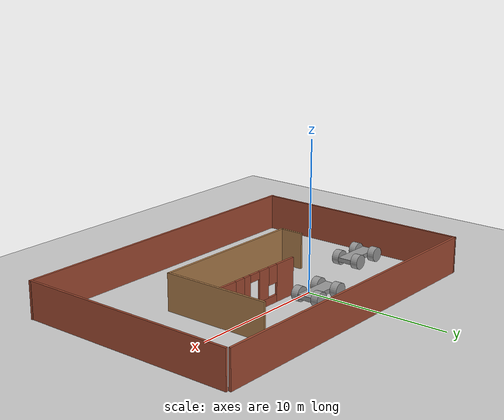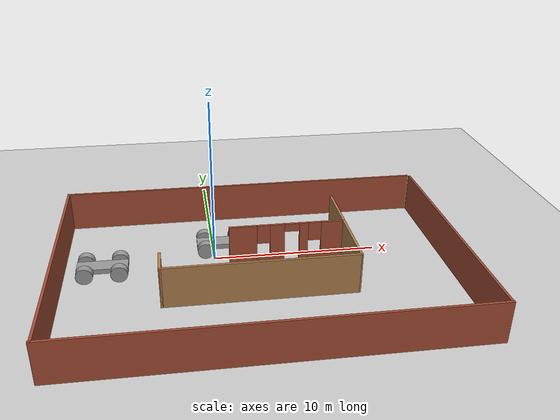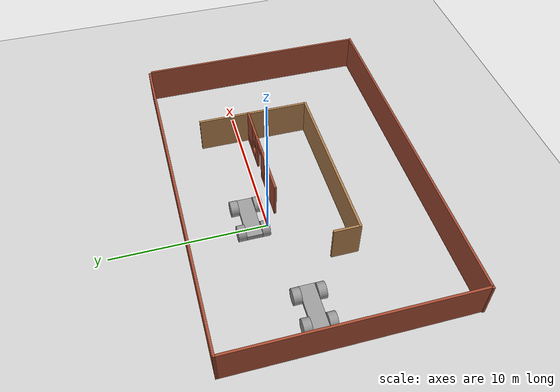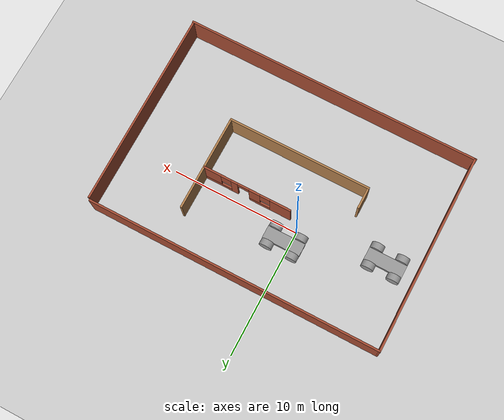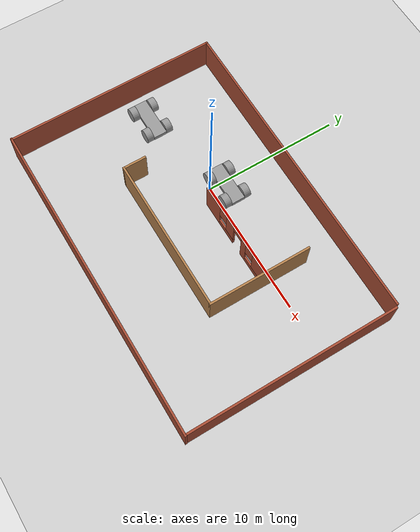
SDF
<sdf version="1.6">
 <world name="default">
  <plugin name="Project1" filename="libProject1.so"/>
  <light name="sun" type="directional">
   <pose>0 0 10 0 -0 0</pose>
   <diffuse>0.8 0.8 0.8 1</diffuse>
   <specular>0.2 0.2 0.2 1</specular>
   <attenuation>
    <range>1000</range>
    <constant>0.9</constant>
    <linear>0.01</linear>
    <quadratic>0.001</quadratic>
   </attenuation>
   <direction>-0.5 0.1 -0.9</direction>
  </light>
  <model name="ground_plane">
   <static>1</static>
   <link name="link">
    <collision name="collision">
     <geometry><plane><normal>0 0 1</normal><size>100 100</size></plane></geometry>
     <surface>
      <contact><collide_bitmask>65535</collide_bitmask></contact>
      <friction><ode><mu>100</mu><mu2>50</mu2></ode></friction>
     </surface>
    </collision>
    <visual name="visual">
     <cast_shadows>0</cast_shadows>
     <geometry><plane><normal>0 0 1</normal><size>100 100</size></plane></geometry>
     <material>
      <script><uri>file://media/materials/scripts/gazebo.material</uri><name>Gazebo/Grey</name></script>
     </material>
    </visual>
   </link>
  </model>
  <gravity>0 0 -9.8</gravity>
  <magnetic_field>6e-06 2.3e-05 -4.2e-05</magnetic_field>
  <atmosphere type="adiabatic"/>
  <physics name="default_physics" default="0" type="ode">
   <max_step_size>0.001</max_step_size>
   <real_time_factor>1</real_time_factor>
   <real_time_update_rate>1000</real_time_update_rate>
  </physics>
  <scene><ambient>0.4 0.4 0.4 1</ambient><background>0.7 0.7 0.7 1</background><shadows>1</shadows></scene>
  <audio><device>default</device></audio>
  <spherical_coordinates>
   <surface_model>EARTH_WGS84</surface_model>
   <latitude_deg>0</latitude_deg>
   <longitude_deg>0</longitude_deg>
   <elevation>0</elevation>
   <heading_deg>0</heading_deg>
  </spherical_coordinates>
  <model name="myworld">
   <pose>2.45103 -2.50473 0 0 -0 0</pose>
   <link name="Wall_11">
    <collision name="Wall_11_Collision">
     <geometry><box><size>23.25 0.15 2.5</size></box></geometry>
     <pose>0 0 1.25 0 -0 0</pose>
    </collision>
    <visual name="Wall_11_Visual">
     <pose>0 0 1.25 0 -0 0</pose>
     <geometry><box><size>23.25 0.15 2.5</size></box></geometry>
     <material>
      <script><uri>file://media/materials/scripts/gazebo.material</uri><name>Gazebo/Bricks</name></script>
      <ambient>1 1 1 1</ambient>
     </material>
     <meta><layer>0</layer></meta>
    </visual>
    <pose>-0 -7.70697 0 0 -0 3.14159</pose>
   </link>
   <link name="Wall_12">
    <collision name="Wall_12_Collision">
     <geometry><box><size>15.5174 0.15 2.5</size></box></geometry>
     <pose>0 0 1.25 0 -0 0</pose>
    </collision>
    <visual name="Wall_12_Visual">
     <pose>0 0 1.25 0 -0 0</pose>
     <geometry><box><size>15.5174 0.15 2.5</size></box></geometry>
     <material>
      <script><uri>file://media/materials/scripts/gazebo.material</uri><name>Gazebo/Bricks</name></script>
      <ambient>1 1 1 1</ambient>
     </material>
     <meta><layer>0</layer></meta>
    </visual>
    <pose>-11.5063 0.023248 0 0 -0 1.57116</pose>
   </link>
   <link name="Wall_14">
    <collision name="Wall_14_Collision">
     <geometry><box><size>15.25 0.15 2.5</size></box></geometry>
     <pose>0 0 1.25 0 -0 0</pose>
    </collision>
    <visual name="Wall_14_Visual">
     <pose>0 0 1.25 0 -0 0</pose>
     <geometry><box><size>15.25 0.15 2.5</size></box></geometry>
     <material>
      <script><uri>file://media/materials/scripts/gazebo.material</uri><name>Gazebo/Bricks</name></script>
      <ambient>1 1 1 1</ambient>
     </material>
     <meta><layer>0</layer></meta>
    </visual>
    <pose>11.5202 -0.031521 0 0 -0 1.5708</pose>
   </link>
   <link name="Wall_16">
    <collision name="Wall_16_Collision">
     <geometry><box><size>1.75 0.15 2.5</size></box></geometry>
     <pose>0 0 1.25 0 -0 0</pose>
    </collision>
    <visual name="Wall_16_Visual">
     <pose>0 0 1.25 0 -0 0</pose>
     <geometry><box><size>1.75 0.15 2.5</size></box></geometry>
     <material>
      <script><uri>file://media/materials/scripts/gazebo.material</uri><name>Gazebo/Wood</name></script>
      <ambient>1 1 1 1</ambient>
     </material>
     <meta><layer>0</layer></meta>
    </visual>
    <pose>-5.70376 -1.45034 0 0 -0 -1.5708</pose>
   </link>
   <link name="Wall_17">
    <collision name="Wall_17_Collision">
     <geometry><box><size>11.25 0.15 2.5</size></box></geometry>
     <pose>0 0 1.25 0 -0 0</pose>
    </collision>
    <visual name="Wall_17_Visual">
     <pose>0 0 1.25 0 -0 0</pose>
     <geometry><box><size>11.25 0.15 2.5</size></box></geometry>
     <material>
      <script><uri>file://media/materials/scripts/gazebo.material</uri><name>Gazebo/Wood</name></script>
      <ambient>0.435294 0.796078 0.67451 1</ambient>
     </material>
     <meta><layer>0</layer></meta>
    </visual>
    <pose>-0.153756 -2.25034 0 0 -0 0</pose>
   </link>
   <link name="Wall_18">
    <collision name="Wall_18_Collision">
     <geometry><box><size>7.5 0.15 2.5</size></box></geometry>
     <pose>0 0 1.25 0 -0 0</pose>
    </collision>
    <visual name="Wall_18_Visual">
     <pose>0 0 1.25 0 -0 0</pose>
     <geometry><box><size>7.5 0.15 2.5</size></box></geometry>
     <material>
      <script><uri>file://media/materials/scripts/gazebo.material</uri><name>Gazebo/Wood</name></script>
      <ambient>0.435294 0.796078 0.67451 1</ambient>
     </material>
     <meta><layer>0</layer></meta>
    </visual>
    <pose>5.39624 1.42466 0 0 -0 1.5708</pose>
   </link>
   <link name="Wall_9">
    <collision name="Wall_9_Collision">
     <geometry><box><size>23 0.15 2.5</size></box></geometry>
     <pose>0 0 1.25 0 -0 0</pose>
    </collision>
    <visual name="Wall_9_Visual">
     <pose>0 0 1.25 0 -0 0</pose>
     <geometry><box><size>23 0.15 2.5</size></box></geometry>
     <material>
      <script><uri>file://media/materials/scripts/gazebo.material</uri><name>Gazebo/Bricks</name></script>
      <ambient>1 1 1 1</ambient>
     </material>
     <meta><layer>0</layer></meta>
    </visual>
    <pose>-0.084094 7.70694 0 0 -0 0</pose>
   </link>
   <static>1</static>
  </model>
  <model name="model">
   <link name="link_0">
    <inertial>
     <mass>1</mass>
     <inertia>
      <ixx>0.166667</ixx>
      <ixy>0</ixy>
      <ixz>0</ixz>
      <iyy>0.166667</iyy>
      <iyz>0</iyz>
      <izz>0.166667</izz>
     </inertia>
    </inertial>
    <pose>0 -1e-06 0 0 -0 0</pose>
    <visual name="visual">
     <geometry><box><size>3 1 0.3</size></box></geometry>
     <material>
      <lighting>1</lighting>
      <script><uri>file://media/materials/scripts/gazebo.material</uri><name>Gazebo/Grey</name></script>
      <shader type="vertex"><normal_map>__default__</normal_map></shader>
      <ambient>0.3 0.3 0.3 1</ambient>
      <diffuse>0.7 0.7 0.7 1</diffuse>
      <specular>0.01 0.01 0.01 1</specular>
      <emissive>0 0 0 1</emissive>
     </material>
    </visual>
    <collision name="collision">
     <geometry><box><size>3 1 0.3</size></box></geometry>
     <surface>
      <friction>
       <ode><mu>1</mu><mu2>1</mu2><fdir1>0 0 0</fdir1><slip1>0</slip1><slip2>0</slip2></ode>
       <torsional>
        <coefficient>1</coefficient>
        <patch_radius>0</patch_radius>
        <surface_radius>0</surface_radius>
        <use_patch_radius>1</use_patch_radius>
        <ode><slip>0</slip></ode>
       </torsional>
      </friction>
      <bounce><restitution_coefficient>0</restitution_coefficient><threshold>1e+06</threshold></bounce>
      <contact>
       <collide_without_contact>0</collide_without_contact>
       <collide_without_contact_bitmask>1</collide_without_contact_bitmask>
       <collide_bitmask>1</collide_bitmask>
       <ode>
        <soft_cfm>0</soft_cfm>
        <soft_erp>0.2</soft_erp>
        <kp>1e+13</kp>
        <kd>1</kd>
        <max_vel>0.01</max_vel>
        <min_depth>0</min_depth>
       </ode>
       <bullet>
        <split_impulse>1</split_impulse>
        <split_impulse_penetration_threshold>-0.01</split_impulse_penetration_threshold>
        <soft_cfm>0</soft_cfm>
        <soft_erp>0.2</soft_erp>
        <kp>1e+13</kp>
        <kd>1</kd>
       </bullet>
      </contact>
     </surface>
    </collision>
   </link>
   <link name="link_1">
    <inertial>
     <mass>1</mass>
     <inertia><ixx>0.145833</ixx><ixy>0</ixy><ixz>0</ixz><iyy>0.145833</iyy><iyz>0</iyz><izz>0.125</izz></inertia>
    </inertial>
    <pose>1 0.750047 0 0 -0 0</pose>
    <visual name="visual">
     <pose>0 0 0 1.5707 -0 0</pose>
     <geometry><cylinder><radius>0.5</radius><length>0.5</length></cylinder></geometry>
     <material>
      <lighting>1</lighting>
      <script><uri>file://media/materials/scripts/gazebo.material</uri><name>Gazebo/Grey</name></script>
      <shader type="vertex"><normal_map>__default__</normal_map></shader>
      <ambient>0.3 0.3 0.3 1</ambient>
      <diffuse>0.7 0.7 0.7 1</diffuse>
      <specular>0.01 0.01 0.01 1</specular>
      <emissive>0 0 0 1</emissive>
     </material>
    </visual>
    <collision name="collision">
     <pose>0 0 0 1.5707 -0 0</pose>
     <geometry><cylinder><radius>0.5</radius><length>0.5</length></cylinder></geometry>
     <surface>
      <friction>
       <ode><mu>1</mu><mu2>1</mu2><fdir1>0 0 0</fdir1><slip1>0</slip1><slip2>0</slip2></ode>
       <torsional>
        <coefficient>1</coefficient>
        <patch_radius>0</patch_radius>
        <surface_radius>0</surface_radius>
        <use_patch_radius>1</use_patch_radius>
        <ode><slip>0</slip></ode>
       </torsional>
      </friction>
      <bounce><restitution_coefficient>0</restitution_coefficient><threshold>1e+06</threshold></bounce>
      <contact>
       <collide_without_contact>0</collide_without_contact>
       <collide_without_contact_bitmask>1</collide_without_contact_bitmask>
       <collide_bitmask>1</collide_bitmask>
       <ode>
        <soft_cfm>0</soft_cfm>
        <soft_erp>0.2</soft_erp>
        <kp>1e+13</kp>
        <kd>1</kd>
        <max_vel>0.01</max_vel>
        <min_depth>0</min_depth>
       </ode>
       <bullet>
        <split_impulse>1</split_impulse>
        <split_impulse_penetration_threshold>-0.01</split_impulse_penetration_threshold>
        <soft_cfm>0</soft_cfm>
        <soft_erp>0.2</soft_erp>
        <kp>1e+13</kp>
        <kd>1</kd>
       </bullet>
      </contact>
     </surface>
    </collision>
   </link>
   <link name="link_1_clone">
    <inertial>
     <mass>1</mass>
     <inertia><ixx>0.145833</ixx><ixy>0</ixy><ixz>0</ixz><iyy>0.145833</iyy><iyz>0</iyz><izz>0.125</izz></inertia>
    </inertial>
    <pose>-1 0.750047 0 0 -0 0</pose>
    <visual name="visual">
     <pose>0 0 0 1.5707 -0 0</pose>
     <geometry><cylinder><radius>0.5</radius><length>0.5</length></cylinder></geometry>
     <material>
      <lighting>1</lighting>
      <script><uri>file://media/materials/scripts/gazebo.material</uri><name>Gazebo/Grey</name></script>
      <shader type="vertex"><normal_map>__default__</normal_map></shader>
      <ambient>0.3 0.3 0.3 1</ambient>
      <diffuse>0.7 0.7 0.7 1</diffuse>
      <specular>0.01 0.01 0.01 1</specular>
      <emissive>0 0 0 1</emissive>
     </material>
    </visual>
    <collision name="collision">
     <pose>0 0 0 1.5707 -0 0</pose>
     <geometry><cylinder><radius>0.5</radius><length>0.5</length></cylinder></geometry>
     <surface>
      <friction>
       <ode><mu>1</mu><mu2>1</mu2><fdir1>0 0 0</fdir1><slip1>0</slip1><slip2>0</slip2></ode>
       <torsional>
        <coefficient>1</coefficient>
        <patch_radius>0</patch_radius>
        <surface_radius>0</surface_radius>
        <use_patch_radius>1</use_patch_radius>
        <ode><slip>0</slip></ode>
       </torsional>
      </friction>
      <bounce><restitution_coefficient>0</restitution_coefficient><threshold>1e+06</threshold></bounce>
      <contact>
       <collide_without_contact>0</collide_without_contact>
       <collide_without_contact_bitmask>1</collide_without_contact_bitmask>
       <collide_bitmask>1</collide_bitmask>
       <ode>
        <soft_cfm>0</soft_cfm>
        <soft_erp>0.2</soft_erp>
        <kp>1e+13</kp>
        <kd>1</kd>
        <max_vel>0.01</max_vel>
        <min_depth>0</min_depth>
       </ode>
       <bullet>
        <split_impulse>1</split_impulse>
        <split_impulse_penetration_threshold>-0.01</split_impulse_penetration_threshold>
        <soft_cfm>0</soft_cfm>
        <soft_erp>0.2</soft_erp>
        <kp>1e+13</kp>
        <kd>1</kd>
       </bullet>
      </contact>
     </surface>
    </collision>
   </link>
   <link name="link_1_clone_0">
    <inertial>
     <mass>1</mass>
     <inertia><ixx>0.145833</ixx><ixy>0</ixy><ixz>0</ixz><iyy>0.145833</iyy><iyz>0</iyz><izz>0.125</izz></inertia>
    </inertial>
    <pose>-1 -0.750049 0 0 -0 0</pose>
    <visual name="visual">
     <pose>0 0 0 1.5707 -0 0</pose>
     <geometry><cylinder><radius>0.5</radius><length>0.5</length></cylinder></geometry>
     <material>
      <lighting>1</lighting>
      <script><uri>file://media/materials/scripts/gazebo.material</uri><name>Gazebo/Grey</name></script>
      <shader type="vertex"><normal_map>__default__</normal_map></shader>
      <ambient>0.3 0.3 0.3 1</ambient>
      <diffuse>0.7 0.7 0.7 1</diffuse>
      <specular>0.01 0.01 0.01 1</specular>
      <emissive>0 0 0 1</emissive>
     </material>
    </visual>
    <collision name="collision">
     <pose>0 0 0 1.5707 -0 0</pose>
     <geometry><cylinder><radius>0.5</radius><length>0.5</length></cylinder></geometry>
     <surface>
      <friction>
       <ode><mu>1</mu><mu2>1</mu2><fdir1>0 0 0</fdir1><slip1>0</slip1><slip2>0</slip2></ode>
       <torsional>
        <coefficient>1</coefficient>
        <patch_radius>0</patch_radius>
        <surface_radius>0</surface_radius>
        <use_patch_radius>1</use_patch_radius>
        <ode><slip>0</slip></ode>
       </torsional>
      </friction>
      <bounce><restitution_coefficient>0</restitution_coefficient><threshold>1e+06</threshold></bounce>
      <contact>
       <collide_without_contact>0</collide_without_contact>
       <collide_without_contact_bitmask>1</collide_without_contact_bitmask>
       <collide_bitmask>1</collide_bitmask>
       <ode>
        <soft_cfm>0</soft_cfm>
        <soft_erp>0.2</soft_erp>
        <kp>1e+13</kp>
        <kd>1</kd>
        <max_vel>0.01</max_vel>
        <min_depth>0</min_depth>
       </ode>
       <bullet>
        <split_impulse>1</split_impulse>
        <split_impulse_penetration_threshold>-0.01</split_impulse_penetration_threshold>
        <soft_cfm>0</soft_cfm>
        <soft_erp>0.2</soft_erp>
        <kp>1e+13</kp>
        <kd>1</kd>
       </bullet>
      </contact>
     </surface>
    </collision>
   </link>
   <link name="link_1_clone_1">
    <inertial>
     <mass>1</mass>
     <inertia><ixx>0.145833</ixx><ixy>0</ixy><ixz>0</ixz><iyy>0.145833</iyy><iyz>0</iyz><izz>0.125</izz></inertia>
    </inertial>
    <pose>1 -0.750049 0 0 -0 0</pose>
    <visual name="visual">
     <pose>0 0 0 1.5707 -0 0</pose>
     <geometry><cylinder><radius>0.5</radius><length>0.5</length></cylinder></geometry>
     <material>
      <lighting>1</lighting>
      <script><uri>file://media/materials/scripts/gazebo.material</uri><name>Gazebo/Grey</name></script>
      <shader type="vertex"><normal_map>__default__</normal_map></shader>
      <ambient>0.3 0.3 0.3 1</ambient>
      <diffuse>0.7 0.7 0.7 1</diffuse>
      <specular>0.01 0.01 0.01 1</specular>
      <emissive>0 0 0 1</emissive>
     </material>
    </visual>
    <collision name="collision">
     <pose>0 0 0 1.5707 -0 0</pose>
     <geometry><cylinder><radius>0.5</radius><length>0.5</length></cylinder></geometry>
     <surface>
      <friction>
       <ode><mu>1</mu><mu2>1</mu2><fdir1>0 0 0</fdir1><slip1>0</slip1><slip2>0</slip2></ode>
       <torsional>
        <coefficient>1</coefficient>
        <patch_radius>0</patch_radius>
        <surface_radius>0</surface_radius>
        <use_patch_radius>1</use_patch_radius>
        <ode><slip>0</slip></ode>
       </torsional>
      </friction>
      <bounce><restitution_coefficient>0</restitution_coefficient><threshold>1e+06</threshold></bounce>
      <contact>
       <collide_without_contact>0</collide_without_contact>
       <collide_without_contact_bitmask>1</collide_without_contact_bitmask>
       <collide_bitmask>1</collide_bitmask>
       <ode>
        <soft_cfm>0</soft_cfm>
        <soft_erp>0.2</soft_erp>
        <kp>1e+13</kp>
        <kd>1</kd>
        <max_vel>0.01</max_vel>
        <min_depth>0</min_depth>
       </ode>
       <bullet>
        <split_impulse>1</split_impulse>
        <split_impulse_penetration_threshold>-0.01</split_impulse_penetration_threshold>
        <soft_cfm>0</soft_cfm>
        <soft_erp>0.2</soft_erp>
        <kp>1e+13</kp>
        <kd>1</kd>
       </bullet>
      </contact>
     </surface>
    </collision>
   </link>
   <joint name="link_0_JOINT_0" type="revolute">
    <parent>link_0</parent>
    <child>link_1_clone_1</child>
    <axis>
     <xyz>1 0 0</xyz>
     <use_parent_model_frame>0</use_parent_model_frame>
     <limit>
      <lower>-1.79769e+308</lower>
      <upper>1.79769e+308</upper>
      <effort>-1</effort>
      <velocity>-1</velocity>
     </limit>
     <dynamics>
      <spring_reference>0</spring_reference>
      <spring_stiffness>0</spring_stiffness>
      <damping>0</damping>
     </dynamics>
    </axis>
    <physics>
     <ode><limit><cfm>0</cfm><erp>0.2</erp></limit><suspension><cfm>0</cfm><erp>0.2</erp></suspension></ode>
    </physics>
   </joint>
   <joint name="link_0_JOINT_1" type="revolute">
    <parent>link_0</parent>
    <child>link_1_clone_0</child>
    <axis>
     <xyz>1 0 0</xyz>
     <use_parent_model_frame>0</use_parent_model_frame>
     <limit>
      <lower>-1.79769e+308</lower>
      <upper>1.79769e+308</upper>
      <effort>-1</effort>
      <velocity>-1</velocity>
     </limit>
     <dynamics>
      <spring_reference>0</spring_reference>
      <spring_stiffness>0</spring_stiffness>
      <damping>0</damping>
     </dynamics>
    </axis>
    <physics>
     <ode><limit><cfm>0</cfm><erp>0.2</erp></limit><suspension><cfm>0</cfm><erp>0.2</erp></suspension></ode>
    </physics>
   </joint>
   <joint name="link_0_JOINT_2" type="revolute">
    <parent>link_0</parent>
    <child>link_1</child>
    <axis>
     <xyz>1 0 0</xyz>
     <use_parent_model_frame>0</use_parent_model_frame>
     <limit>
      <lower>-1.79769e+308</lower>
      <upper>1.79769e+308</upper>
      <effort>-1</effort>
      <velocity>-1</velocity>
     </limit>
     <dynamics>
      <spring_reference>0</spring_reference>
      <spring_stiffness>0</spring_stiffness>
      <damping>0</damping>
     </dynamics>
    </axis>
    <physics>
     <ode><limit><cfm>0</cfm><erp>0.2</erp></limit><suspension><cfm>0</cfm><erp>0.2</erp></suspension></ode>
    </physics>
   </joint>
   <joint name="link_0_JOINT_3" type="revolute">
    <parent>link_0</parent>
    <child>link_1_clone</child>
    <axis>
     <xyz>1 0 0</xyz>
     <use_parent_model_frame>0</use_parent_model_frame>
     <limit>
      <lower>-1.79769e+308</lower>
      <upper>1.79769e+308</upper>
      <effort>-1</effort>
      <velocity>-1</velocity>
     </limit>
     <dynamics>
      <spring_reference>0</spring_reference>
      <spring_stiffness>0</spring_stiffness>
      <damping>0</damping>
     </dynamics>
    </axis>
    <physics>
     <ode><limit><cfm>0</cfm><erp>0.2</erp></limit><suspension><cfm>0</cfm><erp>0.2</erp></suspension></ode>
    </physics>
   </joint>
   <static>0</static>
   <pose>0.491281 1.07317 0.5 0 -0 7.6e-05</pose>
  </model>
  <model name="model_clone">
   <link name="link_0">
    <inertial>
     <mass>1</mass>
     <inertia>
      <ixx>0.166667</ixx>
      <ixy>0</ixy>
      <ixz>0</ixz>
      <iyy>0.166667</iyy>
      <iyz>0</iyz>
      <izz>0.166667</izz>
     </inertia>
    </inertial>
    <pose>0 -1e-06 0 0 -0 0</pose>
    <visual name="visual">
     <geometry><box><size>3 1 0.3</size></box></geometry>
     <material>
      <lighting>1</lighting>
      <script><uri>file://media/materials/scripts/gazebo.material</uri><name>Gazebo/Grey</name></script>
      <shader type="vertex"><normal_map>__default__</normal_map></shader>
      <ambient>0.3 0.3 0.3 1</ambient>
      <diffuse>0.7 0.7 0.7 1</diffuse>
      <specular>0.01 0.01 0.01 1</specular>
      <emissive>0 0 0 1</emissive>
     </material>
    </visual>
    <collision name="collision">
     <geometry><box><size>3 1 0.3</size></box></geometry>
     <surface>
      <friction>
       <ode><mu>1</mu><mu2>1</mu2><fdir1>0 0 0</fdir1><slip1>0</slip1><slip2>0</slip2></ode>
       <torsional>
        <coefficient>1</coefficient>
        <patch_radius>0</patch_radius>
        <surface_radius>0</surface_radius>
        <use_patch_radius>1</use_patch_radius>
        <ode><slip>0</slip></ode>
       </torsional>
      </friction>
      <bounce><restitution_coefficient>0</restitution_coefficient><threshold>1e+06</threshold></bounce>
      <contact>
       <collide_without_contact>0</collide_without_contact>
       <collide_without_contact_bitmask>1</collide_without_contact_bitmask>
       <collide_bitmask>1</collide_bitmask>
       <ode>
        <soft_cfm>0</soft_cfm>
        <soft_erp>0.2</soft_erp>
        <kp>1e+13</kp>
        <kd>1</kd>
        <max_vel>0.01</max_vel>
        <min_depth>0</min_depth>
       </ode>
       <bullet>
        <split_impulse>1</split_impulse>
        <split_impulse_penetration_threshold>-0.01</split_impulse_penetration_threshold>
        <soft_cfm>0</soft_cfm>
        <soft_erp>0.2</soft_erp>
        <kp>1e+13</kp>
        <kd>1</kd>
       </bullet>
      </contact>
     </surface>
    </collision>
   </link>
   <link name="link_1">
    <inertial>
     <mass>1</mass>
     <inertia><ixx>0.145833</ixx><ixy>0</ixy><ixz>0</ixz><iyy>0.145833</iyy><iyz>0</iyz><izz>0.125</izz></inertia>
    </inertial>
    <pose>1 0.750047 0 0 -0 0</pose>
    <visual name="visual">
     <pose>0 0 0 1.5707 -0 0</pose>
     <geometry><cylinder><radius>0.5</radius><length>0.5</length></cylinder></geometry>
     <material>
      <lighting>1</lighting>
      <script><uri>file://media/materials/scripts/gazebo.material</uri><name>Gazebo/Grey</name></script>
      <shader type="vertex"><normal_map>__default__</normal_map></shader>
      <ambient>0.3 0.3 0.3 1</ambient>
      <diffuse>0.7 0.7 0.7 1</diffuse>
      <specular>0.01 0.01 0.01 1</specular>
      <emissive>0 0 0 1</emissive>
     </material>
    </visual>
    <collision name="collision">
     <pose>0 0 0 1.5707 -0 0</pose>
     <geometry><cylinder><radius>0.5</radius><length>0.5</length></cylinder></geometry>
     <surface>
      <friction>
       <ode><mu>1</mu><mu2>1</mu2><fdir1>0 0 0</fdir1><slip1>0</slip1><slip2>0</slip2></ode>
       <torsional>
        <coefficient>1</coefficient>
        <patch_radius>0</patch_radius>
        <surface_radius>0</surface_radius>
        <use_patch_radius>1</use_patch_radius>
        <ode><slip>0</slip></ode>
       </torsional>
      </friction>
      <bounce><restitution_coefficient>0</restitution_coefficient><threshold>1e+06</threshold></bounce>
      <contact>
       <collide_without_contact>0</collide_without_contact>
       <collide_without_contact_bitmask>1</collide_without_contact_bitmask>
       <collide_bitmask>1</collide_bitmask>
       <ode>
        <soft_cfm>0</soft_cfm>
        <soft_erp>0.2</soft_erp>
        <kp>1e+13</kp>
        <kd>1</kd>
        <max_vel>0.01</max_vel>
        <min_depth>0</min_depth>
       </ode>
       <bullet>
        <split_impulse>1</split_impulse>
        <split_impulse_penetration_threshold>-0.01</split_impulse_penetration_threshold>
        <soft_cfm>0</soft_cfm>
        <soft_erp>0.2</soft_erp>
        <kp>1e+13</kp>
        <kd>1</kd>
       </bullet>
      </contact>
     </surface>
    </collision>
   </link>
   <link name="link_1_clone">
    <inertial>
     <mass>1</mass>
     <inertia><ixx>0.145833</ixx><ixy>0</ixy><ixz>0</ixz><iyy>0.145833</iyy><iyz>0</iyz><izz>0.125</izz></inertia>
    </inertial>
    <pose>-1 0.750047 0 0 -0 0</pose>
    <visual name="visual">
     <pose>0 0 0 1.5707 -0 0</pose>
     <geometry><cylinder><radius>0.5</radius><length>0.5</length></cylinder></geometry>
     <material>
      <lighting>1</lighting>
      <script><uri>file://media/materials/scripts/gazebo.material</uri><name>Gazebo/Grey</name></script>
      <shader type="vertex"><normal_map>__default__</normal_map></shader>
      <ambient>0.3 0.3 0.3 1</ambient>
      <diffuse>0.7 0.7 0.7 1</diffuse>
      <specular>0.01 0.01 0.01 1</specular>
      <emissive>0 0 0 1</emissive>
     </material>
    </visual>
    <collision name="collision">
     <pose>0 0 0 1.5707 -0 0</pose>
     <geometry><cylinder><radius>0.5</radius><length>0.5</length></cylinder></geometry>
     <surface>
      <friction>
       <ode><mu>1</mu><mu2>1</mu2><fdir1>0 0 0</fdir1><slip1>0</slip1><slip2>0</slip2></ode>
       <torsional>
        <coefficient>1</coefficient>
        <patch_radius>0</patch_radius>
        <surface_radius>0</surface_radius>
        <use_patch_radius>1</use_patch_radius>
        <ode><slip>0</slip></ode>
       </torsional>
      </friction>
      <bounce><restitution_coefficient>0</restitution_coefficient><threshold>1e+06</threshold></bounce>
      <contact>
       <collide_without_contact>0</collide_without_contact>
       <collide_without_contact_bitmask>1</collide_without_contact_bitmask>
       <collide_bitmask>1</collide_bitmask>
       <ode>
        <soft_cfm>0</soft_cfm>
        <soft_erp>0.2</soft_erp>
        <kp>1e+13</kp>
        <kd>1</kd>
        <max_vel>0.01</max_vel>
        <min_depth>0</min_depth>
       </ode>
       <bullet>
        <split_impulse>1</split_impulse>
        <split_impulse_penetration_threshold>-0.01</split_impulse_penetration_threshold>
        <soft_cfm>0</soft_cfm>
        <soft_erp>0.2</soft_erp>
        <kp>1e+13</kp>
        <kd>1</kd>
       </bullet>
      </contact>
     </surface>
    </collision>
   </link>
   <link name="link_1_clone_0">
    <inertial>
     <mass>1</mass>
     <inertia><ixx>0.145833</ixx><ixy>0</ixy><ixz>0</ixz><iyy>0.145833</iyy><iyz>0</iyz><izz>0.125</izz></inertia>
    </inertial>
    <pose>-1 -0.750049 0 0 -0 0</pose>
    <visual name="visual">
     <pose>0 0 0 1.5707 -0 0</pose>
     <geometry><cylinder><radius>0.5</radius><length>0.5</length></cylinder></geometry>
     <material>
      <lighting>1</lighting>
      <script><uri>file://media/materials/scripts/gazebo.material</uri><name>Gazebo/Grey</name></script>
      <shader type="vertex"><normal_map>__default__</normal_map></shader>
      <ambient>0.3 0.3 0.3 1</ambient>
      <diffuse>0.7 0.7 0.7 1</diffuse>
      <specular>0.01 0.01 0.01 1</specular>
      <emissive>0 0 0 1</emissive>
     </material>
    </visual>
    <collision name="collision">
     <pose>0 0 0 1.5707 -0 0</pose>
     <geometry><cylinder><radius>0.5</radius><length>0.5</length></cylinder></geometry>
     <surface>
      <friction>
       <ode><mu>1</mu><mu2>1</mu2><fdir1>0 0 0</fdir1><slip1>0</slip1><slip2>0</slip2></ode>
       <torsional>
        <coefficient>1</coefficient>
        <patch_radius>0</patch_radius>
        <surface_radius>0</surface_radius>
        <use_patch_radius>1</use_patch_radius>
        <ode><slip>0</slip></ode>
       </torsional>
      </friction>
      <bounce><restitution_coefficient>0</restitution_coefficient><threshold>1e+06</threshold></bounce>
      <contact>
       <collide_without_contact>0</collide_without_contact>
       <collide_without_contact_bitmask>1</collide_without_contact_bitmask>
       <collide_bitmask>1</collide_bitmask>
       <ode>
        <soft_cfm>0</soft_cfm>
        <soft_erp>0.2</soft_erp>
        <kp>1e+13</kp>
        <kd>1</kd>
        <max_vel>0.01</max_vel>
        <min_depth>0</min_depth>
       </ode>
       <bullet>
        <split_impulse>1</split_impulse>
        <split_impulse_penetration_threshold>-0.01</split_impulse_penetration_threshold>
        <soft_cfm>0</soft_cfm>
        <soft_erp>0.2</soft_erp>
        <kp>1e+13</kp>
        <kd>1</kd>
       </bullet>
      </contact>
     </surface>
    </collision>
   </link>
   <link name="link_1_clone_1">
    <inertial>
     <mass>1</mass>
     <inertia><ixx>0.145833</ixx><ixy>0</ixy><ixz>0</ixz><iyy>0.145833</iyy><iyz>0</iyz><izz>0.125</izz></inertia>
    </inertial>
    <pose>1 -0.750049 0 0 -0 0</pose>
    <visual name="visual">
     <pose>0 0 0 1.5707 -0 0</pose>
     <geometry><cylinder><radius>0.5</radius><length>0.5</length></cylinder></geometry>
     <material>
      <lighting>1</lighting>
      <script><uri>file://media/materials/scripts/gazebo.material</uri><name>Gazebo/Grey</name></script>
      <shader type="vertex"><normal_map>__default__</normal_map></shader>
      <ambient>0.3 0.3 0.3 1</ambient>
      <diffuse>0.7 0.7 0.7 1</diffuse>
      <specular>0.01 0.01 0.01 1</specular>
      <emissive>0 0 0 1</emissive>
     </material>
    </visual>
    <collision name="collision">
     <pose>0 0 0 1.5707 -0 0</pose>
     <geometry><cylinder><radius>0.5</radius><length>0.5</length></cylinder></geometry>
     <surface>
      <friction>
       <ode><mu>1</mu><mu2>1</mu2><fdir1>0 0 0</fdir1><slip1>0</slip1><slip2>0</slip2></ode>
       <torsional>
        <coefficient>1</coefficient>
        <patch_radius>0</patch_radius>
        <surface_radius>0</surface_radius>
        <use_patch_radius>1</use_patch_radius>
        <ode><slip>0</slip></ode>
       </torsional>
      </friction>
      <bounce><restitution_coefficient>0</restitution_coefficient><threshold>1e+06</threshold></bounce>
      <contact>
       <collide_without_contact>0</collide_without_contact>
       <collide_without_contact_bitmask>1</collide_without_contact_bitmask>
       <collide_bitmask>1</collide_bitmask>
       <ode>
        <soft_cfm>0</soft_cfm>
        <soft_erp>0.2</soft_erp>
        <kp>1e+13</kp>
        <kd>1</kd>
        <max_vel>0.01</max_vel>
        <min_depth>0</min_depth>
       </ode>
       <bullet>
        <split_impulse>1</split_impulse>
        <split_impulse_penetration_threshold>-0.01</split_impulse_penetration_threshold>
        <soft_cfm>0</soft_cfm>
        <soft_erp>0.2</soft_erp>
        <kp>1e+13</kp>
        <kd>1</kd>
       </bullet>
      </contact>
     </surface>
    </collision>
   </link>
   <joint name="link_0_JOINT_0" type="revolute">
    <parent>link_0</parent>
    <child>link_1_clone_1</child>
    <axis>
     <xyz>1 0 0</xyz>
     <use_parent_model_frame>0</use_parent_model_frame>
     <limit>
      <lower>-1.79769e+308</lower>
      <upper>1.79769e+308</upper>
      <effort>-1</effort>
      <velocity>-1</velocity>
     </limit>
     <dynamics>
      <spring_reference>0</spring_reference>
      <spring_stiffness>0</spring_stiffness>
      <damping>0</damping>
     </dynamics>
    </axis>
    <physics>
     <ode><limit><cfm>0</cfm><erp>0.2</erp></limit><suspension><cfm>0</cfm><erp>0.2</erp></suspension></ode>
    </physics>
   </joint>
   <joint name="link_0_JOINT_1" type="revolute">
    <parent>link_0</parent>
    <child>link_1_clone_0</child>
    <axis>
     <xyz>1 0 0</xyz>
     <use_parent_model_frame>0</use_parent_model_frame>
     <limit>
      <lower>-1.79769e+308</lower>
      <upper>1.79769e+308</upper>
      <effort>-1</effort>
      <velocity>-1</velocity>
     </limit>
     <dynamics>
      <spring_reference>0</spring_reference>
      <spring_stiffness>0</spring_stiffness>
      <damping>0</damping>
     </dynamics>
    </axis>
    <physics>
     <ode><limit><cfm>0</cfm><erp>0.2</erp></limit><suspension><cfm>0</cfm><erp>0.2</erp></suspension></ode>
    </physics>
   </joint>
   <joint name="link_0_JOINT_2" type="revolute">
    <parent>link_0</parent>
    <child>link_1</child>
    <axis>
     <xyz>1 0 0</xyz>
     <use_parent_model_frame>0</use_parent_model_frame>
     <limit>
      <lower>-1.79769e+308</lower>
      <upper>1.79769e+308</upper>
      <effort>-1</effort>
      <velocity>-1</velocity>
     </limit>
     <dynamics>
      <spring_reference>0</spring_reference>
      <spring_stiffness>0</spring_stiffness>
      <damping>0</damping>
     </dynamics>
    </axis>
    <physics>
     <ode><limit><cfm>0</cfm><erp>0.2</erp></limit><suspension><cfm>0</cfm><erp>0.2</erp></suspension></ode>
    </physics>
   </joint>
   <joint name="link_0_JOINT_3" type="revolute">
    <parent>link_0</parent>
    <child>link_1_clone</child>
    <axis>
     <xyz>1 0 0</xyz>
     <use_parent_model_frame>0</use_parent_model_frame>
     <limit>
      <lower>-1.79769e+308</lower>
      <upper>1.79769e+308</upper>
      <effort>-1</effort>
      <velocity>-1</velocity>
     </limit>
     <dynamics>
      <spring_reference>0</spring_reference>
      <spring_stiffness>0</spring_stiffness>
      <damping>0</damping>
     </dynamics>
    </axis>
    <physics>
     <ode><limit><cfm>0</cfm><erp>0.2</erp></limit><suspension><cfm>0</cfm><erp>0.2</erp></suspension></ode>
    </physics>
   </joint>
   <static>0</static>
   <pose>-6.67477 -0.906149 0.499999 -1e-06 -0 7.5e-05</pose>
  </model>
  <model name="model_0">
   <pose>4.35289 -0.707437 0 0 -0 0</pose>
   <link name="Wall_0">
    <visual name="Wall_0_Visual_0">
     <pose>-2.66089 0 1.25 0 -0 0</pose>
     <geometry><box><size>1.67823 0.15 2.5</size></box></geometry>
     <material>
      <script><uri>file://media/materials/scripts/gazebo.material</uri><name>Gazebo/Bricks</name></script>
      <ambient>1 1 1 1</ambient>
     </material>
     <meta><layer>0</layer></meta>
    </visual>
    <collision name="Wall_0_Collision_0">
     <geometry><box><size>1.67823 0.15 2.5</size></box></geometry>
     <pose>-2.66089 0 1.25 0 -0 0</pose>
    </collision>
    <visual name="Wall_0_Visual_1">
     <pose>1.03194 0 1.25 0 -0 0</pose>
     <geometry><box><size>0.537836 0.15 2.5</size></box></geometry>
     <material>
      <script><uri>file://media/materials/scripts/gazebo.material</uri><name>Gazebo/Bricks</name></script>
      <ambient>1 1 1 1</ambient>
     </material>
     <meta><layer>0</layer></meta>
    </visual>
    <collision name="Wall_0_Collision_1">
     <geometry><box><size>0.537836 0.15 2.5</size></box></geometry>
     <pose>1.03194 0 1.25 0 -0 0</pose>
    </collision>
    <visual name="Wall_0_Visual_2">
     <pose>-0.979373 0 0.25 0 -0 0</pose>
     <geometry><box><size>1.6848 0.15 0.5</size></box></geometry>
     <material>
      <script><uri>file://media/materials/scripts/gazebo.material</uri><name>Gazebo/Bricks</name></script>
      <ambient>1 1 1 1</ambient>
     </material>
     <meta><layer>0</layer></meta>
    </visual>
    <collision name="Wall_0_Collision_2">
     <geometry><box><size>1.6848 0.15 0.5</size></box></geometry>
     <pose>-0.979373 0 0.25 0 -0 0</pose>
    </collision>
    <visual name="Wall_0_Visual_3">
     <pose>2.40043 0 0.25 0 -0 0</pose>
     <geometry><box><size>2.19914 0.15 0.5</size></box></geometry>
     <material>
      <script><uri>file://media/materials/scripts/gazebo.material</uri><name>Gazebo/Bricks</name></script>
      <ambient>1 1 1 1</ambient>
     </material>
     <meta><layer>0</layer></meta>
    </visual>
    <collision name="Wall_0_Collision_3">
     <geometry><box><size>2.19914 0.15 0.5</size></box></geometry>
     <pose>2.40043 0 0.25 0 -0 0</pose>
    </collision>
    <visual name="Wall_0_Visual_4">
     <pose>-0.579373 0 1.5 0 -0 0</pose>
     <geometry><box><size>0.884796 0.15 2</size></box></geometry>
     <material>
      <script><uri>file://media/materials/scripts/gazebo.material</uri><name>Gazebo/Bricks</name></script>
      <ambient>1 1 1 1</ambient>
     </material>
     <meta><layer>0</layer></meta>
    </visual>
    <collision name="Wall_0_Collision_4">
     <geometry><box><size>0.884796 0.15 2</size></box></geometry>
     <pose>-0.579373 0 1.5 0 -0 0</pose>
    </collision>
    <visual name="Wall_0_Visual_5">
     <pose>-0.579373 0 1.5 0 -0 0</pose>
     <geometry><box><size>0.884796 0.15 2</size></box></geometry>
     <material>
      <script><uri>file://media/materials/scripts/gazebo.material</uri><name>Gazebo/Bricks</name></script>
      <ambient>1 1 1 1</ambient>
     </material>
     <meta><layer>0</layer></meta>
    </visual>
    <collision name="Wall_0_Collision_5">
     <geometry><box><size>0.884796 0.15 2</size></box></geometry>
     <pose>-0.579373 0 1.5 0 -0 0</pose>
    </collision>
    <visual name="Wall_0_Visual_6">
     <pose>2.80043 0 1.5 0 -0 0</pose>
     <geometry><box><size>1.39914 0.15 2</size></box></geometry>
     <material>
      <script><uri>file://media/materials/scripts/gazebo.material</uri><name>Gazebo/Bricks</name></script>
      <ambient>1 1 1 1</ambient>
     </material>
     <meta><layer>0</layer></meta>
    </visual>
    <collision name="Wall_0_Collision_6">
     <geometry><box><size>1.39914 0.15 2</size></box></geometry>
     <pose>2.80043 0 1.5 0 -0 0</pose>
    </collision>
    <visual name="Wall_0_Visual_7">
     <pose>-1.42177 0 1.9 0 -0 0</pose>
     <geometry><box><size>0.8 0.15 1.2</size></box></geometry>
     <material>
      <script><uri>file://media/materials/scripts/gazebo.material</uri><name>Gazebo/Bricks</name></script>
      <ambient>1 1 1 1</ambient>
     </material>
     <meta><layer>0</layer></meta>
    </visual>
    <collision name="Wall_0_Collision_7">
     <geometry><box><size>0.8 0.15 1.2</size></box></geometry>
     <pose>-1.42177 0 1.9 0 -0 0</pose>
    </collision>
    <visual name="Wall_0_Visual_8">
     <pose>1.70086 0 1.9 0 -0 0</pose>
     <geometry><box><size>0.8 0.15 1.2</size></box></geometry>
     <material>
      <script><uri>file://media/materials/scripts/gazebo.material</uri><name>Gazebo/Bricks</name></script>
      <ambient>1 1 1 1</ambient>
     </material>
     <meta><layer>0</layer></meta>
    </visual>
    <collision name="Wall_0_Collision_8">
     <geometry><box><size>0.8 0.15 1.2</size></box></geometry>
     <pose>1.70086 0 1.9 0 -0 0</pose>
    </collision>
    <visual name="Wall_0_Visual_9">
     <pose>0.313025 0 2.25 0 -0 0</pose>
     <geometry><box><size>0.9 0.15 0.5</size></box></geometry>
     <material>
      <script><uri>file://media/materials/scripts/gazebo.material</uri><name>Gazebo/Bricks</name></script>
      <ambient>1 1 1 1</ambient>
     </material>
     <meta><layer>0</layer></meta>
    </visual>
    <collision name="Wall_0_Collision_9">
     <geometry><box><size>0.9 0.15 0.5</size></box></geometry>
     <pose>0.313025 0 2.25 0 -0 0</pose>
    </collision>
    <visual name="Wall_0_Visual_10">
     <pose>0.313025 0 2.25 0 -0 0</pose>
     <geometry><box><size>0.9 0.15 0.5</size></box></geometry>
     <material>
      <script><uri>file://media/materials/scripts/gazebo.material</uri><name>Gazebo/Bricks</name></script>
      <ambient>1 1 1 1</ambient>
     </material>
     <meta><layer>0</layer></meta>
    </visual>
    <collision name="Wall_0_Collision_10">
     <geometry><box><size>0.9 0.15 0.5</size></box></geometry>
     <pose>0.313025 0 2.25 0 -0 0</pose>
    </collision>
   </link>
   <static>1</static>
  </model>
 </world>
</sdf>
